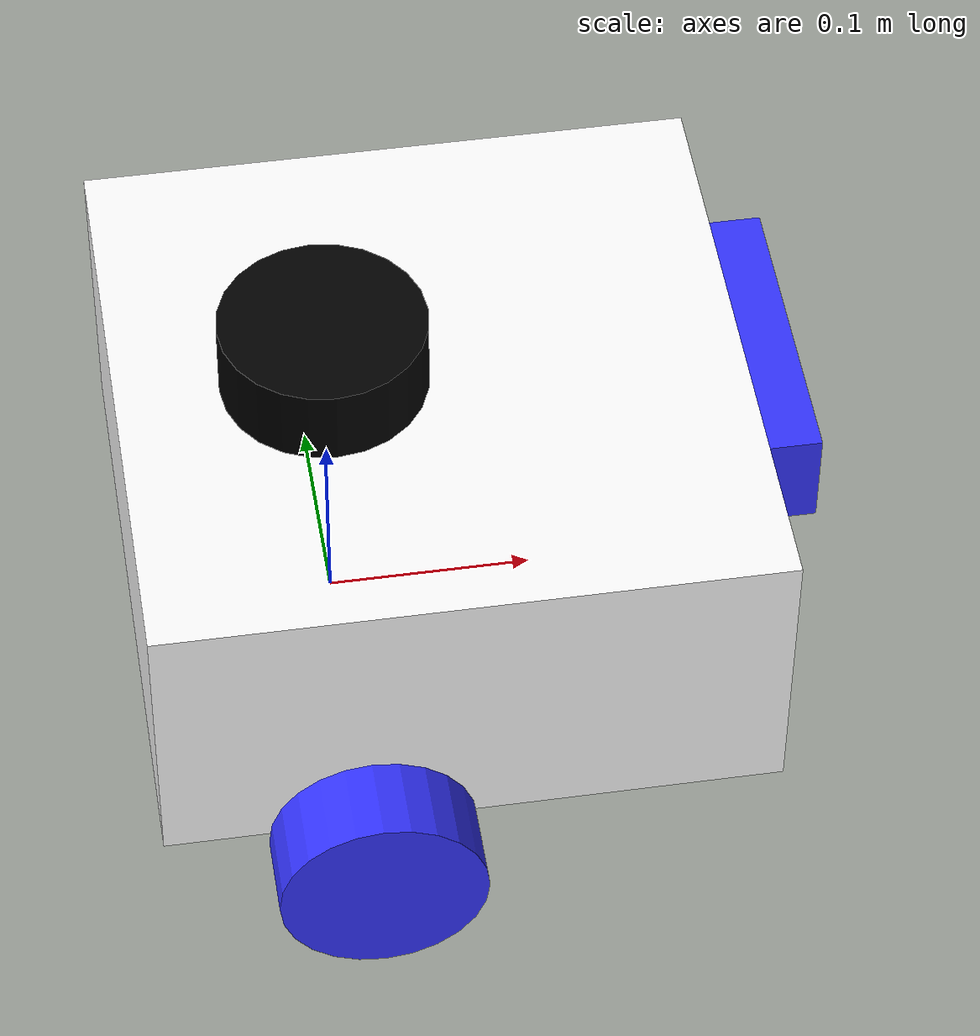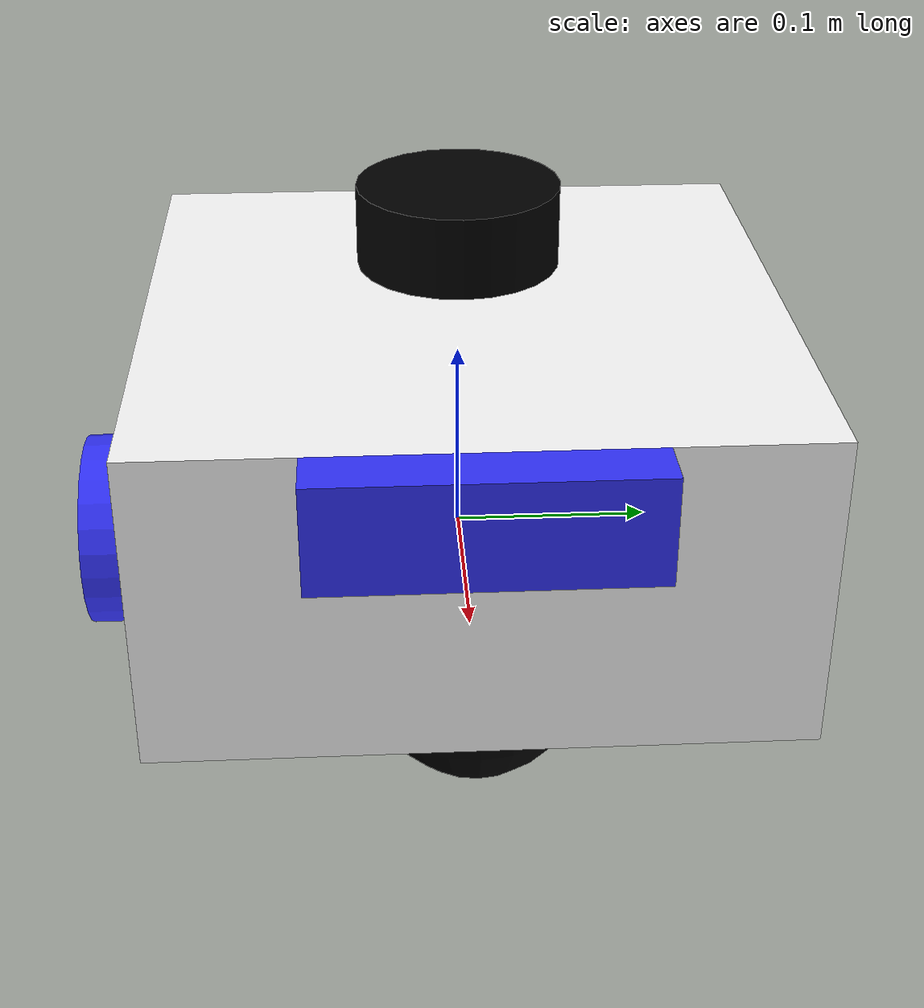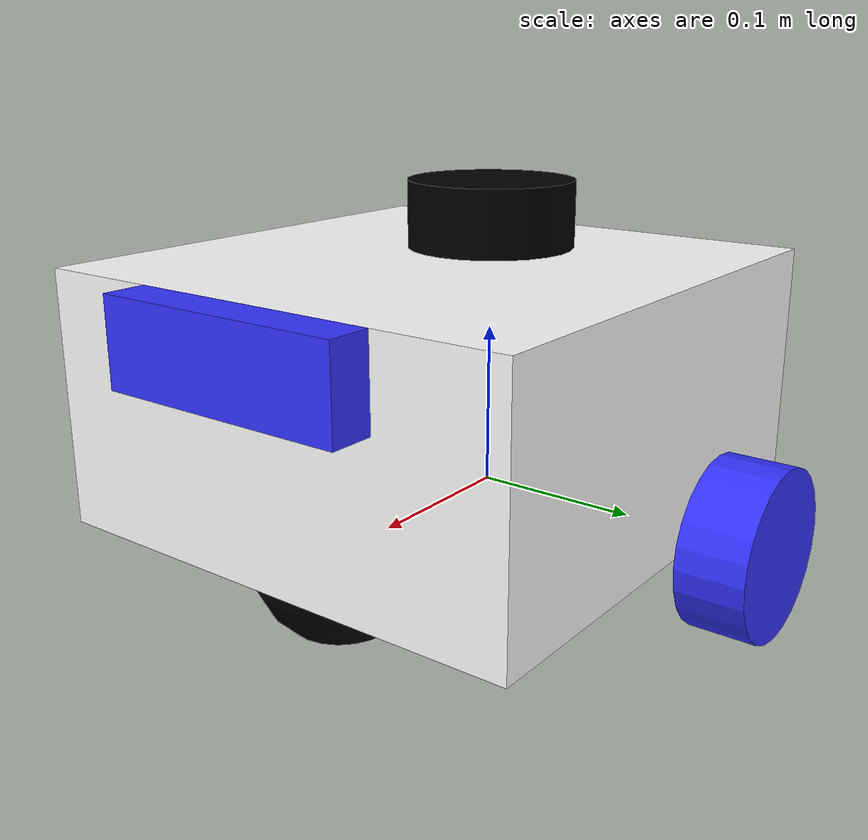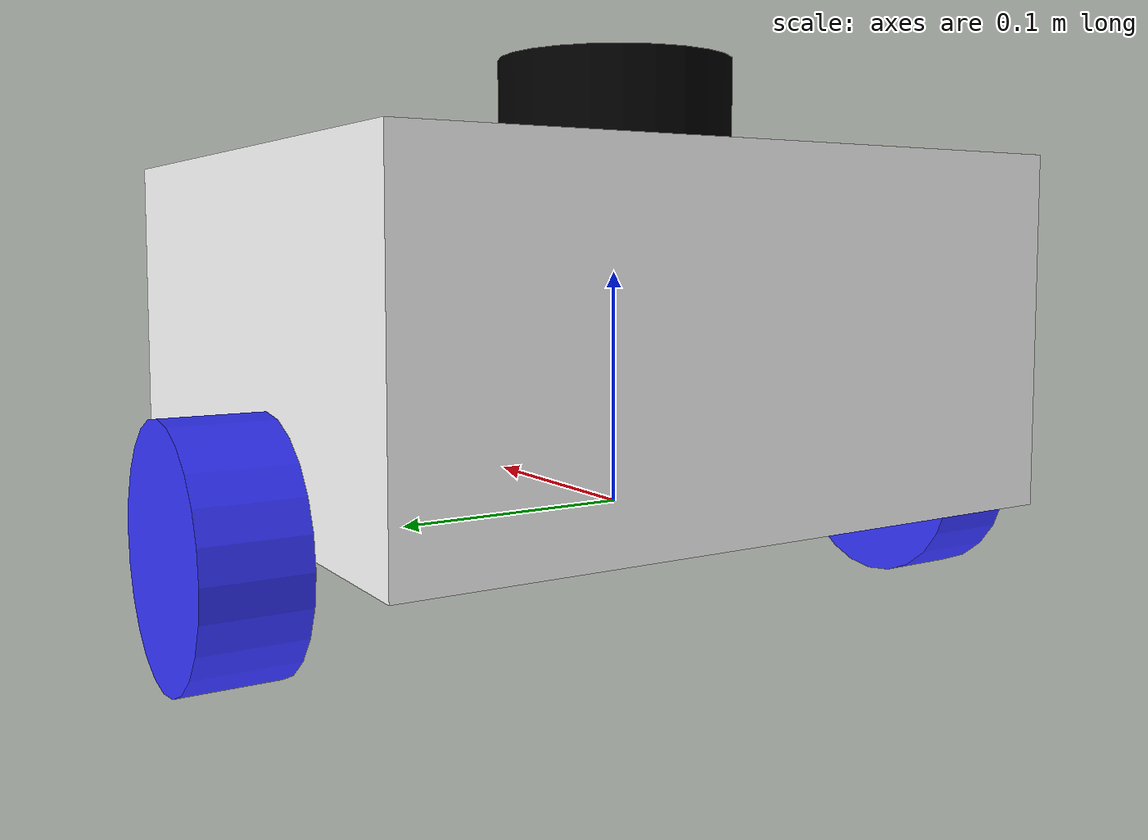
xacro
<?xml version="1.0"?>
<robot xmlns:xacro="http://www.ros.org/wiki/xacro" name="robot">

    <!-- Example link -->
    <xacro:include filename="inertial_macros.xacro"/>
    <xacro:include filename="properties.xacro"/>
    <xacro:include filename="robot_core.xacro"/>
    <xacro:include filename="gazebo_control.xacro"/>
    <xacro:include filename="imu.xacro"/>
    <xacro:include filename="lidar.xacro"/>
    <!--xacro:include filename="camera.xacro"/-->
    <xacro:include filename="kinect.xacro"/>

    <!-- Example link -->

</robot>

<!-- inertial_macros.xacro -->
<robot xmlns:xacro="http://www.ros.org/wiki/xacro" >

    <xacro:macro name="inertial_sphere" params="mass radius *origin">
        <inertial>
            <xacro:insert_block name="origin"/>
            <mass value="${mass}" />
            <inertia ixx="${(2/5) * mass * (radius*radius)}" ixy="0.0" ixz="0.0"
                    iyy="${(2/5) * mass * (radius*radius)}" iyz="0.0"
                    izz="${(2/5) * mass * (radius*radius)}" />
        </inertial>
    </xacro:macro>

    <xacro:macro name="inertial_box" params="mass x y z *origin">
        <inertial>
            <xacro:insert_block name="origin"/>
            <mass value="${mass}" />
            <inertia ixx="${(1/12) * mass * (y*y+z*z)}" ixy="0.0" ixz="0.0"
                    iyy="${(1/12) * mass * (x*x+z*z)}" iyz="0.0"
                    izz="${(1/12) * mass * (x*x+y*y)}" />
        </inertial>
    </xacro:macro>

    <xacro:macro name="inertial_cylinder" params="mass length radius *origin">
        <inertial>
            <xacro:insert_block name="origin"/>
            <mass value="${mass}" />
            <inertia ixx="${(1/12) * mass * (3*radius*radius + length*length)}" ixy="0.0" ixz="0.0"
                    iyy="${(1/12) * mass * (3*radius*radius + length*length)}" iyz="0.0"
                    izz="${(1/2) * mass * (radius*radius)}" />
        </inertial>
    </xacro:macro>
</robot>

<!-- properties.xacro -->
<robot xmlns:xacro="http://www.ros.org/wiki/xacro">
    <!-- Color Definitions -->
    <material name="white">
        <color rgba= "1 1 1 1"/>
    </material>

    <material name="orange">
        <color rgba= "1 0.3 0.1 1"/>
    </material>

    <material name="blue">
        <color rgba= "0.2 0.2 1 1"/>
    </material>

    <material name="black">
        <color rgba= "0 0 0 1"/>
    </material>

    <material name="red">
        <color rgba= "1 0 0 1"/>
    </material>

    <gazebo reference="chassis">
        <material>Gazebo/White</material>
    </gazebo>

    <gazebo reference="left_wheel">
        <material>Gazebo/Blue</material>
    </gazebo>

    <gazebo reference="right_wheel">
        <material>Gazebo/Blue</material>
    </gazebo>

    <gazebo reference="caster_wheel">
        <material>Gazebo/Black</material>
        <mu1 value = "0.001" />
        <mu2 value = "0.001" />
    </gazebo>
</robot>

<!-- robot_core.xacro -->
<robot xmlns:xacro="http://www.ros.org/wiki/xacro">

    <!-- Example link -->
    <link name="base_link">
    </link>

    <joint name="base_link" type="fixed">
        <parent link="base_link"/>
        <child link="chassis"/>
        <origin xyz="-0.1 0 0"/>
    </joint>

    <!-- chassis link -->
    <link name="chassis">
        <visual>
            <origin xyz="0.15 0 0.075"/>
            <geometry>
                <box size="0.3 0.3 0.15"/>
            </geometry>
            <material name="white"/>
        </visual>
        <collision>
            <origin xyz="0.15 0 0.075"/>
            <geometry>
                <box size="0.3 0.3 0.15"/>
            </geometry>
        </collision>
        <xacro:inertial_box mass="0.5" x="0.3" y="0.3" z="0.15">
            <origin xyz="0.15 0 0.075" rpy="0 0 0"/>
        </xacro:inertial_box>
    </link>

    <!-- left wheel joint -->
    <joint name="left_wheel_joint" type="continuous">
        <parent link="base_link"/>
        <child link="left_wheel"/>
        <origin xyz="0 0.175 0" rpy="-${pi/2} 0 0"/>
        <axis xyz="0 0 1"/>

    </joint>

    <!-- left wheel link -->
    <link name="left_wheel">
        <visual>
            <geometry>
                <cylinder radius="0.05" length="0.04"/>
            </geometry>
            <material name="blue"/>
        </visual>
        <collision>
            <geometry>
                <cylinder radius="0.05" length="0.04"/>
            </geometry>
        </collision>
        <xacro:inertial_cylinder mass="0.1" length="0.04" radius="0.05">
            <origin xyz="0 0 0" rpy="0 0 0"/>
        </xacro:inertial_cylinder>

    </link>

    <!-- right wheel joint -->
    <joint name="right_wheel_joint" type="continuous">
        <parent link="base_link"/>
        <child link="right_wheel"/>
        <origin xyz="0 -0.175 0" rpy="${pi/2} 0 0"/>
        <axis xyz="0 0 -1"/>
    </joint>

    <!-- right wheel link -->
    <link name="right_wheel">
        <visual>
            <geometry>
                <cylinder radius="0.05" length="0.04"/>
            </geometry>
            <material name="blue"/>
        </visual>
        <collision>
            <geometry>
                <cylinder radius="0.05" length="0.04"/>
            </geometry>
        </collision>
        <xacro:inertial_cylinder mass="0.1" length="0.04" radius="0.05">
            <origin xyz="0 0 0" rpy="0 0 0"/>
        </xacro:inertial_cylinder>

    </link>

    <!-- caster wheel joint -->
    <joint name="caster_wheel_joint" type="fixed">
        <parent link="chassis"/>
        <child link="caster_wheel"/>
        <origin xyz="0.24 0 0"/>
    </joint>

    <!-- left wheel link -->
    <link name="caster_wheel">
        <visual>
            <geometry>
                <sphere radius="0.05"/>
            </geometry>
            <material name="black"/>
        </visual>
        <collision>
            <geometry>
                <sphere radius="0.05"/>
            </geometry>
        </collision>
        <xacro:inertial_sphere mass="0.1" radius="0.05">
            <origin xyz="0 0 0" rpy="0 0 0"/>
        </xacro:inertial_sphere>

    </link>

    <gazebo reference="chassis">
        <material>Gazebo/White</material>
    </gazebo>

    <gazebo reference="left_wheel">
        <material>Gazebo/Blue</material>
    </gazebo>

    <gazebo reference="right_wheel">
        <material>Gazebo/Blue</material>
    </gazebo>

    <gazebo reference="caster_wheel">
        <material>Gazebo/Black</material>
        <mu1 value = "0.001" />
        <mu2 value = "0.001" />
    </gazebo>

</robot>

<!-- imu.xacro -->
<robot xmlns:xacro="http://www.ros.org/wiki/xacro">

    <!-- Imu_frame -->
    <link name="imu_frame">
        <visual>
            <origin xyz="0 0 0"/>
            <geometry>
                <box size="0.01 0.01 0.005"/>
            </geometry>
            <material name="red"/>
        </visual>
        <xacro:inertial_box mass="0.005" x="0.01" y="0.01" z="0.005">
            <origin xyz="0 0 0" rpy="0 0 0"/>
        </xacro:inertial_box>
        <collision>
            <origin xyz="0 0 0"/>
            <geometry>
                <box size="0.1 0.1 0.01"/>
            </geometry>
        </collision>
    </link>

    <!-- Imu joint -->
    <joint name="imu_joint" type="fixed">
        <parent link="chassis"/>
        <child link="imu_frame"/>
        <origin xyz="0.1 0 -0.0025" rpy="0 0 0"/>
    </joint>

    <gazebo reference="imu_frame">
        <material>Gazebo/Red</material>
        <gravity>true</gravity>
        <sensor name="imu_sensor" type="imu">
            <always_on>true</always_on>
            <update_rate>20</update_rate>
            <visualize>true</visualize>
            <!--Sensor will be published for the default topic-->
            <topic>__default_topic__</topic>
            <plugin filename="libgazebo_ros_imu_sensor.so" name="imu_plugin">
                <!--Sensor data will be published for the default topic-->
                <topicName>imu</topicName>
                <bodyName>imu_frame</bodyName>
                <updateRateHZ>20.0</updateRateHZ>
                <gaussianNoise>0.0</gaussianNoise>
                <!--Offsets from the reference link reference frame-->
                <xyzOffset>0 0 0</xyzOffset>
                <rpyOffset>0 0 0</rpyOffset>
                <frameName>imu_frame</frameName>
                <!--Sensor doesn't calibrate to the initial position-->
                <!--So world is tajen as reference-->
                <initialOrientationAsReference>false</initialOrientationAsReference>
                <ros>
                    <!--Output topic: scan-->
                    <remapping>~/out:=/imu</remapping>
                </ros>
            </plugin>
            <pose>0 0 0 0 0 0</pose>
        </sensor>
  </gazebo>

</robot>

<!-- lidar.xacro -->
<robot xmlns:xacro="http://www.ros.org/wiki/xacro">

    <!-- lidar joint -->
    <joint name="laser_joint" type="fixed">
        <parent link="chassis"/>
        <child link="laser_frame"/>
        <origin xyz="0.1 0 0.17" rpy="0 0 0"/>
    </joint>

    <!-- laser_frame -->
    <link name="laser_frame">
        <visual>
            <geometry>
                <cylinder radius="0.05" length="0.04"/>
            </geometry>
            <material name="black"/>
        </visual>
        <collision>
            <geometry>
                <cylinder radius="0.05" length="0.04"/>
            </geometry>
        </collision>
        <xacro:inertial_cylinder mass="0.1" length="0.04" radius="0.05">
            <origin xyz="0 0 0" rpy="0 0 0"/>
        </xacro:inertial_cylinder>
    </link>

    <gazebo reference="laser_frame">
        <material>Gazebo/Black</material>
        <sensor name="laser" type="ray">
            <pose>0 0 0 0 0 0</pose>
            <visualize>true</visualize>
            <update_rate>20</update_rate>
            <ray>
                <scan>
                    <horizontal>
                        <!--samples> is the number of simulated lidar rays to generate per complete laser sweep cycle.-->
                        <samples>360</samples>
                        <!--resolution>: this number is multiplied by samples to determine the number range data points.-->
                        <resolution>1</resolution>
                        <min_angle>-3.14</min_angle>
                        <max_angle>3.14</max_angle>
                    </horizontal>
                </scan>
                <range>
                    <min>0.3</min>
                    <max>16</max>
                    <resolution>0.01</resolution>
                </range>
            </ray>
            <plugin name="laser_controller" filename="libgazebo_ros_ray_sensor.so">
                <ros>
                    <remapping>~/out:=/scan</remapping>
                </ros>
                <output_type>sensor_msgs/LaserScan</output_type>
                <frame_name>laser_frame</frame_name>
            </plugin>
        </sensor>
    </gazebo>

</robot>

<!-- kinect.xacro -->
<robot xmlns:xacro="http://www.ros.org/wiki/xacro">

    <xacro:property name="kinect_link" value="0.05" /> <!-- Size of square 'kinect' box -->

    <joint name="kinect_joint" type="fixed">
        <axis xyz="0 0 0" />
        <origin xyz="${0.3+kinect_link/4} 0 ${0.15-kinect_link/2}" rpy="0 0 0"/>
        <parent link="chassis"/>
        <child link="kinect_link"/>
    </joint>

    <!-- kinect -->
    <link name="kinect_link">

        <visual>
            <origin xyz="0 0 0" rpy="0 0 0"/>
            <geometry>
        <box size="${kinect_link/2} ${kinect_link*3} ${kinect_link}"/>
            </geometry>
            <material name="blue"/>
        </visual>

        <collision>
            <origin xyz="0 0 0" rpy="0 0 0"/>
            <geometry>
        <box size="${kinect_link/2} ${kinect_link*3} ${kinect_link}"/>
            </geometry>
        </collision>

        <xacro:inertial_box mass="0.005" x="${kinect_link/2}" y="${kinect_link*3}" z="${kinect_link}">
            <origin xyz="0 0 0" rpy="0 0 0"/>
        </xacro:inertial_box>
    </link>

    <link name="kinect_optical_link"/>
        <joint name="kinect_optical_joint" type="fixed">
        <parent link="kinect_link"/>
        <child link="kinect_optical_link"/>
        <!-- Optical frame: X forward, Y left, Z down -->
        <origin xyz="0 0 0" rpy="-1.5708 0 -1.5708"/> <!-- -90° around X, then -90° around Z -->
    </joint>

    <gazebo reference="kinect_link">
        <material>Gazebo/Blue</material>
        <gravity>true</gravity>

        <sensor name="kinect_camera" type="depth">
            <update_rate>20</update_rate>
            <alwaysOn>true</alwaysOn>

            <camera name="kinect_ir">
                <horizontal_fov>1.047198</horizontal_fov>
                <image>
                    <width>1280</width>
                    <height>720</height>
                    <format>R8G8B8</format>
                </image>
                <clip>
                    <near>0.05</near>
                    <far>3</far>
                </clip>

                <distortion>
                    <k1>0.0</k1>
                    <k2>0.0</k2>
                    <k3>0.0</k3>
                    <p1>0.0</p1>
                    <p2>0.0</p2>
                    <center>0.5 0.5</center>
                </distortion>
            </camera>

            <plugin name="camera_plugin" filename="libgazebo_ros_camera.so">
                <camera_name>kinect_ir</camera_name>
                <frame_name>kinect_optical_link</frame_name>

                <hack_baseline>0.07</hack_baseline>
                <min_depth>0.001</min_depth>
            </plugin>
        </sensor>
    </gazebo>
</robot>
